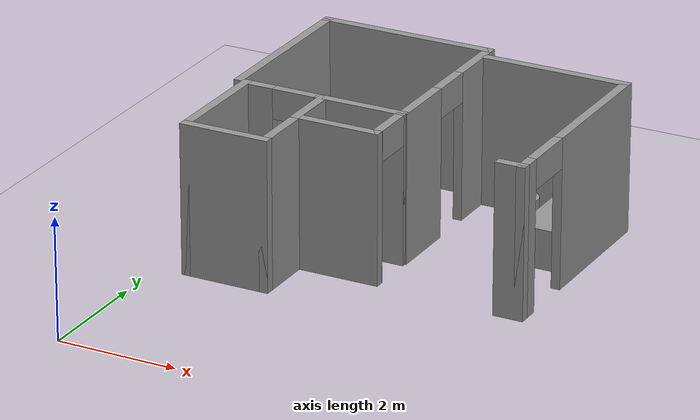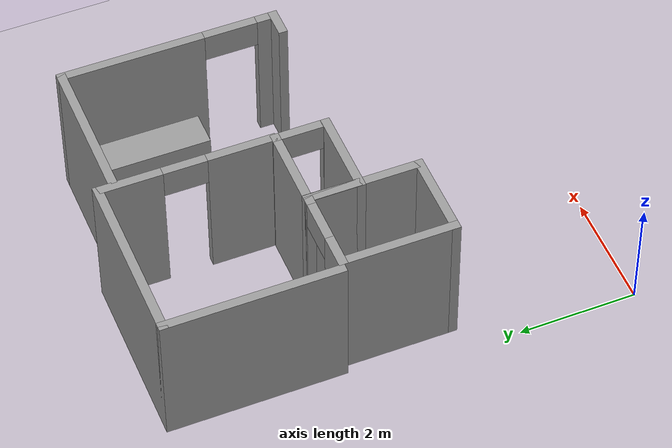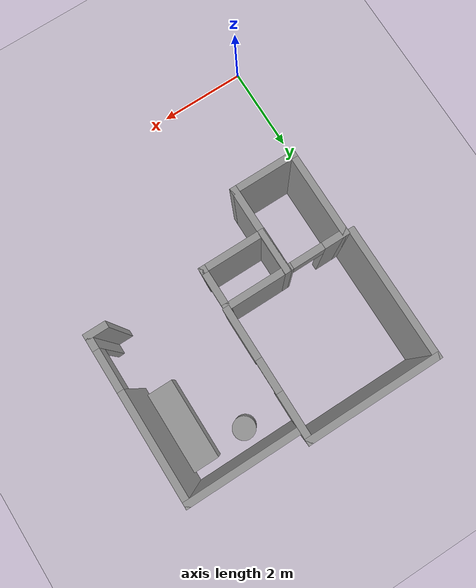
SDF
<sdf version="1.9">
 <world name="default">
  <model name="ground_plane">
   <static>true</static>
   <link name="link">
    <collision name="collision">
     <geometry><plane><normal>0 0 1</normal><size>100 100</size></plane></geometry>
     <surface><friction><ode><mu>100</mu><mu2>50</mu2></ode></friction></surface>
    </collision>
    <visual name="visual">
     <cast_shadows>false</cast_shadows>
     <geometry><plane><normal>0 0 1</normal><size>100 100</size></plane></geometry>
     <material>
      <script><uri>file://media/materials/scripts/gazebo.material</uri><name>Gazebo/Grey</name></script>
     </material>
    </visual>
   </link>
  </model>
  <model name="cma_dispensa">
   <pose>2.5258400000000001 4.4011899999999997 0 0 0 0</pose>
   <link name="Wall_5">
    <collision name="Wall_5_Collision">
     <geometry><box><size>1 0.14999999999999999 2.5</size></box></geometry>
     <pose>0 0 1.25 0 0 0</pose>
    </collision>
    <visual name="Wall_5_Visual">
     <pose>0 0 1.25 0 0 0</pose>
     <geometry><box><size>1 0.14999999999999999 2.5</size></box></geometry>
     <material>
      <script><uri>file://media/materials/scripts/gazebo.material</uri><name>Gazebo/Grey</name></script>
      <ambient>1 1 1 1</ambient>
     </material>
    </visual>
    <pose>-0.67500000000000004 0 0 0 0 1.5708</pose>
   </link>
   <link name="Wall_6">
    <collision name="Wall_6_Collision">
     <geometry><box><size>1.5 0.14999999999999999 2.5</size></box></geometry>
     <pose>0 0 1.25 0 0 0</pose>
    </collision>
    <visual name="Wall_6_Visual">
     <pose>0 0 1.25 0 0 0</pose>
     <geometry><box><size>1.5 0.14999999999999999 2.5</size></box></geometry>
     <material>
      <script><uri>file://media/materials/scripts/gazebo.material</uri><name>Gazebo/Grey</name></script>
      <ambient>1 1 1 1</ambient>
     </material>
    </visual>
    <pose>0 0.42499999999999999 0 0 0 0</pose>
   </link>
   <link name="Wall_7">
    <pose>0.67500000000000004 0 0 0 0 -1.5708</pose>
    <visual name="Wall_7_Visual_0">
     <pose>-0.42749999999999999 0 1.25 0 0 0</pose>
     <geometry><box><size>0.14499999999999999 0.14999999999999999 2.5</size></box></geometry>
     <material>
      <script><uri>file://media/materials/scripts/gazebo.material</uri><name>Gazebo/Grey</name></script>
      <ambient>1 1 1 1</ambient>
     </material>
    </visual>
    <collision name="Wall_7_Collision_0">
     <geometry><box><size>0.14499999999999999 0.14999999999999999 2.5</size></box></geometry>
     <pose>-0.42749999999999999 0 1.25 0 0 0</pose>
    </collision>
    <visual name="Wall_7_Visual_1">
     <pose>0.42249999999999999 0 1.25 0 0 0</pose>
     <geometry><box><size>0.155 0.14999999999999999 2.5</size></box></geometry>
     <material>
      <script><uri>file://media/materials/scripts/gazebo.material</uri><name>Gazebo/Grey</name></script>
      <ambient>1 1 1 1</ambient>
     </material>
    </visual>
    <collision name="Wall_7_Collision_1">
     <geometry><box><size>0.155 0.14999999999999999 2.5</size></box></geometry>
     <pose>0.42249999999999999 0 1.25 0 0 0</pose>
    </collision>
    <visual name="Wall_7_Visual_2">
     <pose>-0.0050000000000000001 0 2.25 0 0 0</pose>
     <geometry><box><size>0.69999999999999996 0.14999999999999999 0.5</size></box></geometry>
     <material>
      <script><uri>file://media/materials/scripts/gazebo.material</uri><name>Gazebo/Grey</name></script>
      <ambient>1 1 1 1</ambient>
     </material>
    </visual>
    <collision name="Wall_7_Collision_2">
     <geometry><box><size>0.69999999999999996 0.14999999999999999 0.5</size></box></geometry>
     <pose>-0.0050000000000000001 0 2.25 0 0 0</pose>
    </collision>
   </link>
   <link name="Wall_8">
    <collision name="Wall_8_Collision">
     <geometry><box><size>1.5 0.14999999999999999 2.5</size></box></geometry>
     <pose>0 0 1.25 0 0 0</pose>
    </collision>
    <visual name="Wall_8_Visual">
     <pose>0 0 1.25 0 0 0</pose>
     <geometry><box><size>1.5 0.14999999999999999 2.5</size></box></geometry>
     <material>
      <script><uri>file://media/materials/scripts/gazebo.material</uri><name>Gazebo/Grey</name></script>
      <ambient>1 1 1 1</ambient>
     </material>
    </visual>
    <pose>0 -0.42499999999999999 0 0 0 3.1415899999999999</pose>
   </link>
   <static>true</static>
  </model>
  <model name="cma_banheiro_e">
   <pose>1.1835800000000001 3.89879 0 0 0 0</pose>
   <link name="Wall_10">
    <collision name="Wall_10_Collision">
     <geometry><box><size>1.5 0.14999999999999999 2.5</size></box></geometry>
     <pose>0 0 1.25 0 0 0</pose>
    </collision>
    <visual name="Wall_10_Visual">
     <pose>0 0 1.25 0 0 0</pose>
     <geometry><box><size>1.5 0.14999999999999999 2.5</size></box></geometry>
     <material>
      <script><uri>file://media/materials/scripts/gazebo.material</uri><name>Gazebo/Grey</name></script>
      <ambient>1 1 1 1</ambient>
     </material>
    </visual>
    <pose>0 -0.92500000000000004 0 0 0 3.1415899999999999</pose>
   </link>
   <link name="Wall_11">
    <collision name="Wall_11_Collision">
     <geometry><box><size>2 0.14999999999999999 2.5</size></box></geometry>
     <pose>0 0 1.25 0 0 0</pose>
    </collision>
    <visual name="Wall_11_Visual">
     <pose>0 0 1.25 0 0 0</pose>
     <geometry><box><size>2 0.14999999999999999 2.5</size></box></geometry>
     <material>
      <script><uri>file://media/materials/scripts/gazebo.material</uri><name>Gazebo/Grey</name></script>
      <ambient>1 1 1 1</ambient>
     </material>
    </visual>
    <pose>-0.67500000000000004 0 0 0 0 1.5708</pose>
   </link>
   <link name="Wall_12">
    <pose>0 0.92500000000000004 0 0 0 0</pose>
    <visual name="Wall_12_Visual_0">
     <pose>-0.46250000000000002 0 1.25 0 0 0</pose>
     <geometry><box><size>0.57499999999999996 0.14999999999999999 2.5</size></box></geometry>
     <material>
      <script><uri>file://media/materials/scripts/gazebo.material</uri><name>Gazebo/Grey</name></script>
      <ambient>1 1 1 1</ambient>
     </material>
    </visual>
    <collision name="Wall_12_Collision_0">
     <geometry><box><size>0.57499999999999996 0.14999999999999999 2.5</size></box></geometry>
     <pose>-0.46250000000000002 0 1.25 0 0 0</pose>
    </collision>
    <visual name="Wall_12_Visual_1">
     <pose>0.64749999999999996 0 1.25 0 0 0</pose>
     <geometry><box><size>0.20499999999999999 0.14999999999999999 2.5</size></box></geometry>
     <material>
      <script><uri>file://media/materials/scripts/gazebo.material</uri><name>Gazebo/Grey</name></script>
      <ambient>1 1 1 1</ambient>
     </material>
    </visual>
    <collision name="Wall_12_Collision_1">
     <geometry><box><size>0.20499999999999999 0.14999999999999999 2.5</size></box></geometry>
     <pose>0.64749999999999996 0 1.25 0 0 0</pose>
    </collision>
    <visual name="Wall_12_Visual_2">
     <pose>0.185 0 2.25 0 0 0</pose>
     <geometry><box><size>0.71999999999999997 0.14999999999999999 0.5</size></box></geometry>
     <material>
      <script><uri>file://media/materials/scripts/gazebo.material</uri><name>Gazebo/Grey</name></script>
      <ambient>1 1 1 1</ambient>
     </material>
    </visual>
    <collision name="Wall_12_Collision_2">
     <geometry><box><size>0.71999999999999997 0.14999999999999999 0.5</size></box></geometry>
     <pose>0.185 0 2.25 0 0 0</pose>
    </collision>
   </link>
   <link name="Wall_13">
    <collision name="Wall_13_Collision">
     <geometry><box><size>2 0.14999999999999999 2.5</size></box></geometry>
     <pose>0 0 1.25 0 0 0</pose>
    </collision>
    <visual name="Wall_13_Visual">
     <pose>0 0 1.25 0 0 0</pose>
     <geometry><box><size>2 0.14999999999999999 2.5</size></box></geometry>
     <material>
      <script><uri>file://media/materials/scripts/gazebo.material</uri><name>Gazebo/Grey</name></script>
      <ambient>1 1 1 1</ambient>
     </material>
    </visual>
    <pose>0.67500000000000004 0 0 0 0 -1.5708</pose>
   </link>
   <static>true</static>
  </model>
  <model name="cma_qe">
   <pose>1.7956099999999999 6.3122800000000003 0 0 0 0</pose>
   <link name="Wall_15">
    <collision name="Wall_15_Collision">
     <geometry><box><size>3 0.14999999999999999 2.5</size></box></geometry>
     <pose>0 0 1.25 0 0 0</pose>
    </collision>
    <visual name="Wall_15_Visual">
     <pose>0 0 1.25 0 0 0</pose>
     <geometry><box><size>3 0.14999999999999999 2.5</size></box></geometry>
     <material>
      <script><uri>file://media/materials/scripts/gazebo.material</uri><name>Gazebo/Grey</name></script>
      <ambient>1 1 1 1</ambient>
     </material>
    </visual>
    <pose>-1.425 0 0 0 0 1.5708</pose>
   </link>
   <link name="Wall_16">
    <collision name="Wall_16_Collision">
     <geometry><box><size>3 0.14999999999999999 2.5</size></box></geometry>
     <pose>0 0 1.25 0 0 0</pose>
    </collision>
    <visual name="Wall_16_Visual">
     <pose>0 0 1.25 0 0 0</pose>
     <geometry><box><size>3 0.14999999999999999 2.5</size></box></geometry>
     <material>
      <script><uri>file://media/materials/scripts/gazebo.material</uri><name>Gazebo/Grey</name></script>
      <ambient>1 1 1 1</ambient>
     </material>
    </visual>
    <pose>0 1.425 0 0 0 0</pose>
   </link>
   <link name="Wall_17">
    <pose>1.425 0 0 0 0 -1.5708</pose>
    <visual name="Wall_17_Visual_0">
     <pose>-0.94499999999999995 0 1.25 0 0 0</pose>
     <geometry><box><size>1.1100000000000001 0.14999999999999999 2.5</size></box></geometry>
     <material>
      <script><uri>file://media/materials/scripts/gazebo.material</uri><name>Gazebo/Grey</name></script>
      <ambient>1 1 1 1</ambient>
     </material>
    </visual>
    <collision name="Wall_17_Collision_0">
     <geometry><box><size>1.1100000000000001 0.14999999999999999 2.5</size></box></geometry>
     <pose>-0.94499999999999995 0 1.25 0 0 0</pose>
    </collision>
    <visual name="Wall_17_Visual_1">
     <pose>0.92000000000000004 0 1.25 0 0 0</pose>
     <geometry><box><size>1.1599999999999999 0.14999999999999999 2.5</size></box></geometry>
     <material>
      <script><uri>file://media/materials/scripts/gazebo.material</uri><name>Gazebo/Grey</name></script>
      <ambient>1 1 1 1</ambient>
     </material>
    </visual>
    <collision name="Wall_17_Collision_1">
     <geometry><box><size>1.1599999999999999 0.14999999999999999 2.5</size></box></geometry>
     <pose>0.92000000000000004 0 1.25 0 0 0</pose>
    </collision>
    <visual name="Wall_17_Visual_2">
     <pose>-0.025000000000000001 0 2.25 0 0 0</pose>
     <geometry><box><size>0.72999999999999998 0.14999999999999999 0.5</size></box></geometry>
     <material>
      <script><uri>file://media/materials/scripts/gazebo.material</uri><name>Gazebo/Grey</name></script>
      <ambient>1 1 1 1</ambient>
     </material>
    </visual>
    <collision name="Wall_17_Collision_2">
     <geometry><box><size>0.72999999999999998 0.14999999999999999 0.5</size></box></geometry>
     <pose>-0.025000000000000001 0 2.25 0 0 0</pose>
    </collision>
   </link>
   <static>true</static>
  </model>
  <model name="cma_area2">
   <pose>4.5227500000000003 5.6786199999999996 0 0 0 0</pose>
   <link name="Wall_23">
    <collision name="Wall_23_Collision">
     <geometry><box><size>2.5 0.14999999999999999 2.5</size></box></geometry>
     <pose>0 0 1.25 0 0 0</pose>
    </collision>
    <visual name="Wall_23_Visual">
     <pose>0 0 1.25 0 0 0</pose>
     <geometry><box><size>2.5 0.14999999999999999 2.5</size></box></geometry>
     <material>
      <script><uri>file://media/materials/scripts/gazebo.material</uri><name>Gazebo/Grey</name></script>
      <ambient>1 1 1 1</ambient>
     </material>
    </visual>
    <pose>0 1.8 0 0 0 0</pose>
   </link>
   <link name="Wall_24">
    <pose>1.175 0 0 0 0 -1.5708</pose>
    <visual name="Wall_24_Visual_0">
     <pose>-0.64249999999999996 0 1.25 0 0 0</pose>
     <geometry><box><size>2.4649999999999999 0.14999999999999999 2.5</size></box></geometry>
     <material>
      <script><uri>file://media/materials/scripts/gazebo.material</uri><name>Gazebo/Grey</name></script>
      <ambient>1 1 1 1</ambient>
     </material>
    </visual>
    <collision name="Wall_24_Collision_0">
     <geometry><box><size>2.4649999999999999 0.14999999999999999 2.5</size></box></geometry>
     <pose>-0.64249999999999996 0 1.25 0 0 0</pose>
    </collision>
    <visual name="Wall_24_Visual_1">
     <pose>1.6825000000000001 0 1.25 0 0 0</pose>
     <geometry><box><size>0.38500000000000001 0.14999999999999999 2.5</size></box></geometry>
     <material>
      <script><uri>file://media/materials/scripts/gazebo.material</uri><name>Gazebo/Grey</name></script>
      <ambient>1 1 1 1</ambient>
     </material>
    </visual>
    <collision name="Wall_24_Collision_1">
     <geometry><box><size>0.38500000000000001 0.14999999999999999 2.5</size></box></geometry>
     <pose>1.6825000000000001 0 1.25 0 0 0</pose>
    </collision>
    <visual name="Wall_24_Visual_2">
     <pose>1.04 0 2.25 0 0 0</pose>
     <geometry><box><size>0.90000000000000002 0.14999999999999999 0.5</size></box></geometry>
     <material>
      <script><uri>file://media/materials/scripts/gazebo.material</uri><name>Gazebo/Grey</name></script>
      <ambient>1 1 1 1</ambient>
     </material>
    </visual>
    <collision name="Wall_24_Collision_2">
     <geometry><box><size>0.90000000000000002 0.14999999999999999 0.5</size></box></geometry>
     <pose>1.04 0 2.25 0 0 0</pose>
    </collision>
   </link>
   <link name="Wall_25">
    <collision name="Wall_25_Collision">
     <geometry><box><size>0.5 0.14999999999999999 2.5</size></box></geometry>
     <pose>0 0 1.25 0 0 0</pose>
    </collision>
    <visual name="Wall_25_Visual">
     <pose>0 0 1.25 0 0 0</pose>
     <geometry><box><size>0.5 0.14999999999999999 2.5</size></box></geometry>
     <material>
      <script><uri>file://media/materials/scripts/gazebo.material</uri><name>Gazebo/Grey</name></script>
      <ambient>1 1 1 1</ambient>
     </material>
    </visual>
    <pose>1 -1.8 0 0 0 3.1415899999999999</pose>
   </link>
   <static>true</static>
  </model>
  <model name="cma_cesto_1">
   <link name="link_1">
    <pose>-0.32965899999999998 -1.55494 0 0 0 0</pose>
    <inertial>
     <mass>0.267897</mass>
     <inertia>
      <ixx>0.026810199999999999</ixx>
      <ixy>0</ixy>
      <ixz>0</ixz>
      <iyy>0.026810199999999999</iyy>
      <iyz>0</iyz>
      <izz>0.0089711099999999992</izz>
     </inertia>
    </inertial>
    <visual name="visual">
     <geometry><cylinder><radius>0.25879200000000002</radius><length>1</length></cylinder></geometry>
     <material>
      <lighting>true</lighting>
      <script><uri>file://media/materials/scripts/gazebo.material</uri><name>Gazebo/Grey</name></script>
      <ambient>0.300000012 0.300000012 0.300000012 1</ambient>
      <diffuse>0.699999988 0.699999988 0.699999988 1</diffuse>
      <specular>0.00999999978 0.00999999978 0.00999999978 1</specular>
      <emissive>0 0 0 1</emissive>
     </material>
    </visual>
    <collision name="collision">
     <geometry><cylinder><radius>0.25879200000000002</radius><length>1</length></cylinder></geometry>
     <surface>
      <friction>
       <ode><mu>1</mu><mu2>1</mu2><fdir1>0 0 0</fdir1><slip1>0</slip1><slip2>0</slip2></ode>
       <torsional>
        <coefficient>1</coefficient>
        <patch_radius>0</patch_radius>
        <surface_radius>0</surface_radius>
        <use_patch_radius>true</use_patch_radius>
        <ode><slip>0</slip></ode>
       </torsional>
      </friction>
      <bounce><restitution_coefficient>0</restitution_coefficient><threshold>1000000</threshold></bounce>
      <contact>
       <collide_without_contact>false</collide_without_contact>
       <collide_without_contact_bitmask>1</collide_without_contact_bitmask>
       <collide_bitmask>1</collide_bitmask>
       <ode>
        <soft_cfm>0</soft_cfm>
        <soft_erp>0.20000000000000001</soft_erp>
        <kp>10000000000000</kp>
        <kd>1</kd>
        <max_vel>0.01</max_vel>
        <min_depth>0</min_depth>
       </ode>
       <bullet>
        <split_impulse>true</split_impulse>
        <split_impulse_penetration_threshold>-0.01</split_impulse_penetration_threshold>
        <soft_cfm>0</soft_cfm>
        <soft_erp>0.20000000000000001</soft_erp>
        <kp>10000000000000</kp>
        <kd>1</kd>
       </bullet>
      </contact>
     </surface>
    </collision>
   </link>
   <static>false</static>
   <pose>4.5598299999999998 8.5251999999999999 0 0 0 0</pose>
  </model>
  <model name="cma_area_a2">
   <link name="link_1">
    <pose>-3.9999999999999998e-06 -3.0000000000000001e-06 0 0 0 0</pose>
    <inertial>
     <mass>0.72138999999999998</mass>
     <inertia>
      <ixx>0.235397</ixx>
      <ixy>0</ixy>
      <ixz>0</ixz>
      <iyy>0.046858799999999999</iyy>
      <iyz>0</iyz>
      <izz>0.229658</izz>
     </inertia>
    </inertial>
    <visual name="visual">
     <geometry><box><size>0.58481000000000005 1.8650100000000001 0.661416</size></box></geometry>
     <material>
      <lighting>true</lighting>
      <script><uri>file://media/materials/scripts/gazebo.material</uri><name>Gazebo/Grey</name></script>
      <ambient>0.300000012 0.300000012 0.300000012 1</ambient>
      <diffuse>0.699999988 0.699999988 0.699999988 1</diffuse>
      <specular>0.00999999978 0.00999999978 0.00999999978 1</specular>
      <emissive>0 0 0 1</emissive>
     </material>
    </visual>
    <collision name="collision">
     <geometry><box><size>0.58481000000000005 1.8650100000000001 0.661416</size></box></geometry>
     <surface>
      <friction>
       <ode><mu>1</mu><mu2>1</mu2><fdir1>0 0 0</fdir1><slip1>0</slip1><slip2>0</slip2></ode>
       <torsional>
        <coefficient>1</coefficient>
        <patch_radius>0</patch_radius>
        <surface_radius>0</surface_radius>
        <use_patch_radius>true</use_patch_radius>
        <ode><slip>0</slip></ode>
       </torsional>
      </friction>
      <bounce><restitution_coefficient>0</restitution_coefficient><threshold>1000000</threshold></bounce>
      <contact>
       <collide_without_contact>false</collide_without_contact>
       <collide_without_contact_bitmask>1</collide_without_contact_bitmask>
       <collide_bitmask>1</collide_bitmask>
       <ode>
        <soft_cfm>0</soft_cfm>
        <soft_erp>0.20000000000000001</soft_erp>
        <kp>10000000000000</kp>
        <kd>1</kd>
        <max_vel>0.01</max_vel>
        <min_depth>0</min_depth>
       </ode>
       <bullet>
        <split_impulse>true</split_impulse>
        <split_impulse_penetration_threshold>-0.01</split_impulse_penetration_threshold>
        <soft_cfm>0</soft_cfm>
        <soft_erp>0.20000000000000001</soft_erp>
        <kp>10000000000000</kp>
        <kd>1</kd>
       </bullet>
      </contact>
     </surface>
    </collision>
   </link>
   <static>false</static>
   <pose>5.2561900000000001 6.2324799999999998 0.5 0 0 0</pose>
  </model>
 </world>
</sdf>
